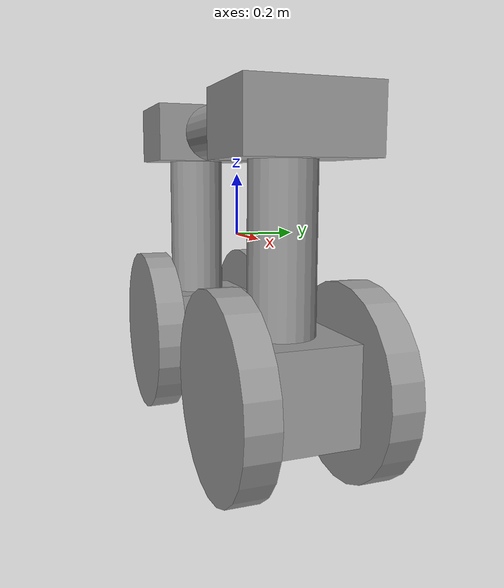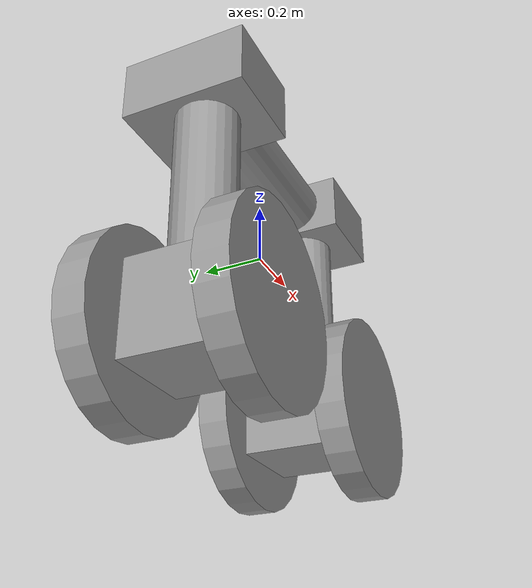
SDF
<?xml version='1.0'?>
<sdf version='1.6'>
  <model name='4wheels'>
    <link name='link_0'>
      <pose frame=''>0.00071 -0.009136 0.350343 0 1.5707 0</pose>
      <inertial>
        <mass>1</mass>
        <inertia>
          <ixx>0.145833</ixx>
          <ixy>0</ixy>
          <ixz>0</ixz>
          <iyy>0.145833</iyy>
          <iyz>0</iyz>
          <izz>0.125</izz>
        </inertia>
        <pose frame=''>0 0 0 0 -0 0</pose>
      </inertial>
      <gravity>1</gravity>
      <self_collide>0</self_collide>
      <kinematic>0</kinematic>
      <visual name='visual'>
        <pose frame=''>0 0 0 0 -0 0</pose>
        <geometry>
          <cylinder>
            <radius>0.1</radius>
            <length>0.5</length>
          </cylinder>
        </geometry>
        <material>
          <lighting>1</lighting>
          <script>
            <uri>file://media/materials/scripts/gazebo.material</uri>
            <name>Gazebo/Grey</name>
          </script>
          <shader type='pixel'>
            <normal_map>__default__</normal_map>
          </shader>
          <ambient>0.3 0.3 0.3 1</ambient>
          <diffuse>0.7 0.7 0.7 1</diffuse>
          <specular>0.01 0.01 0.01 1</specular>
          <emissive>0 0 0 1</emissive>
        </material>
        <transparency>0</transparency>
        <cast_shadows>1</cast_shadows>
      </visual>
      <collision name='collision'>
        <laser_retro>0</laser_retro>
        <max_contacts>10</max_contacts>
        <pose frame=''>0 0 0 0 -0 0</pose>
        <geometry>
          <cylinder>
            <radius>0.1</radius>
            <length>0.5</length>
          </cylinder>
        </geometry>
        <surface>
          <friction>
            <ode>
              <mu>1</mu>
              <mu2>1</mu2>
              <fdir1>0 0 0</fdir1>
              <slip1>0</slip1>
              <slip2>0</slip2>
            </ode>
            <torsional>
              <coefficient>1</coefficient>
              <patch_radius>0</patch_radius>
              <surface_radius>0</surface_radius>
              <use_patch_radius>1</use_patch_radius>
              <ode>
                <slip>0</slip>
              </ode>
            </torsional>
          </friction>
          <bounce>
            <restitution_coefficient>0</restitution_coefficient>
            <threshold>1e+06</threshold>
          </bounce>
          <contact>
            <collide_without_contact>0</collide_without_contact>
            <collide_without_contact_bitmask>1</collide_without_contact_bitmask>
            <collide_bitmask>1</collide_bitmask>
            <ode>
              <soft_cfm>0</soft_cfm>
              <soft_erp>0.2</soft_erp>
              <kp>1e+13</kp>
              <kd>1</kd>
              <max_vel>0.01</max_vel>
              <min_depth>0</min_depth>
            </ode>
            <bullet>
              <split_impulse>1</split_impulse>
              <split_impulse_penetration_threshold>-0.01</split_impulse_penetration_threshold>
              <soft_cfm>0</soft_cfm>
              <soft_erp>0.2</soft_erp>
              <kp>1e+13</kp>
              <kd>1</kd>
            </bullet>
          </contact>
        </surface>
      </collision>
    </link>
    <model name='model'>
      <link name='link_0'>
        <pose frame=''>0.004 0.004 -0.23 0 -0 0</pose>
        <inertial>
          <mass>1</mass>
          <inertia>
            <ixx>0.166667</ixx>
            <ixy>0</ixy>
            <ixz>0</ixz>
            <iyy>0.166667</iyy>
            <iyz>0</iyz>
            <izz>0.166667</izz>
          </inertia>
          <pose frame=''>0 0 0 0 -0 0</pose>
        </inertial>
        <gravity>1</gravity>
        <self_collide>0</self_collide>
        <kinematic>0</kinematic>
        <visual name='visual'>
          <pose frame=''>0 0 0 0 -0 0</pose>
          <geometry>
            <box>
              <size>0.3 0.3 0.3</size>
            </box>
          </geometry>
          <material>
            <lighting>1</lighting>
            <script>
              <uri>file://media/materials/scripts/gazebo.material</uri>
              <name>Gazebo/Grey</name>
            </script>
            <ambient>0.3 0.3 0.3 1</ambient>
            <diffuse>0.7 0.7 0.7 1</diffuse>
            <specular>0.01 0.01 0.01 1</specular>
            <emissive>0 0 0 1</emissive>
            <shader type='vertex'>
              <normal_map>__default__</normal_map>
            </shader>
          </material>
          <transparency>0</transparency>
          <cast_shadows>1</cast_shadows>
        </visual>
        <collision name='collision'>
          <laser_retro>0</laser_retro>
          <max_contacts>10</max_contacts>
          <pose frame=''>0 0 0 0 -0 0</pose>
          <geometry>
            <box>
              <size>0.3 0.3 0.3</size>
            </box>
          </geometry>
          <surface>
            <friction>
              <ode>
                <mu>1</mu>
                <mu2>1</mu2>
                <fdir1>0 0 0</fdir1>
                <slip1>0</slip1>
                <slip2>0</slip2>
              </ode>
              <torsional>
                <coefficient>1</coefficient>
                <patch_radius>0</patch_radius>
                <surface_radius>0</surface_radius>
                <use_patch_radius>1</use_patch_radius>
                <ode>
                  <slip>0</slip>
                </ode>
              </torsional>
            </friction>
            <bounce>
              <restitution_coefficient>0</restitution_coefficient>
              <threshold>1e+06</threshold>
            </bounce>
            <contact>
              <collide_without_contact>0</collide_without_contact>
              <collide_without_contact_bitmask>1</collide_without_contact_bitmask>
              <collide_bitmask>1</collide_bitmask>
              <ode>
                <soft_cfm>0</soft_cfm>
                <soft_erp>0.2</soft_erp>
                <kp>1e+13</kp>
                <kd>1</kd>
                <max_vel>0.01</max_vel>
                <min_depth>0</min_depth>
              </ode>
              <bullet>
                <split_impulse>1</split_impulse>
                <split_impulse_penetration_threshold>-0.01</split_impulse_penetration_threshold>
                <soft_cfm>0</soft_cfm>
                <soft_erp>0.2</soft_erp>
                <kp>1e+13</kp>
                <kd>1</kd>
              </bullet>
            </contact>
          </surface>
        </collision>
      </link>
      <link name='link_1'>
        <pose frame=''>0.004 -0.196019 -0.23 1.5707 -0 0</pose>
        <inertial>
          <mass>1</mass>
          <inertia>
            <ixx>0.145833</ixx>
            <ixy>0</ixy>
            <ixz>0</ixz>
            <iyy>0.145833</iyy>
            <iyz>0</iyz>
            <izz>0.125</izz>
          </inertia>
          <pose frame=''>0 0 0 0 -0 0</pose>
        </inertial>
        <gravity>1</gravity>
        <self_collide>0</self_collide>
        <kinematic>0</kinematic>
        <visual name='visual'>
          <pose frame=''>0 0 0 0 -0 0</pose>
          <geometry>
            <cylinder>
              <radius>0.3</radius>
              <length>0.1</length>
            </cylinder>
          </geometry>
          <material>
            <lighting>1</lighting>
            <script>
              <uri>file://media/materials/scripts/gazebo.material</uri>
              <name>Gazebo/Grey</name>
            </script>
            <ambient>0.3 0.3 0.3 1</ambient>
            <diffuse>0.7 0.7 0.7 1</diffuse>
            <specular>0.01 0.01 0.01 1</specular>
            <emissive>0 0 0 1</emissive>
            <shader type='vertex'>
              <normal_map>__default__</normal_map>
            </shader>
          </material>
          <transparency>0</transparency>
          <cast_shadows>1</cast_shadows>
        </visual>
        <collision name='collision'>
          <laser_retro>0</laser_retro>
          <max_contacts>10</max_contacts>
          <pose frame=''>0 0 0 0 -0 0</pose>
          <geometry>
            <cylinder>
              <radius>0.3</radius>
              <length>0.1</length>
            </cylinder>
          </geometry>
          <surface>
            <friction>
              <ode>
                <mu>1</mu>
                <mu2>1</mu2>
                <fdir1>0 0 0</fdir1>
                <slip1>0</slip1>
                <slip2>0</slip2>
              </ode>
              <torsional>
                <coefficient>1</coefficient>
                <patch_radius>0</patch_radius>
                <surface_radius>0</surface_radius>
                <use_patch_radius>1</use_patch_radius>
                <ode>
                  <slip>0</slip>
                </ode>
              </torsional>
            </friction>
            <bounce>
              <restitution_coefficient>0</restitution_coefficient>
              <threshold>1e+06</threshold>
            </bounce>
            <contact>
              <collide_without_contact>0</collide_without_contact>
              <collide_without_contact_bitmask>1</collide_without_contact_bitmask>
              <collide_bitmask>1</collide_bitmask>
              <ode>
                <soft_cfm>0</soft_cfm>
                <soft_erp>0.2</soft_erp>
                <kp>1e+13</kp>
                <kd>1</kd>
                <max_vel>0.01</max_vel>
                <min_depth>0</min_depth>
              </ode>
              <bullet>
                <split_impulse>1</split_impulse>
                <split_impulse_penetration_threshold>-0.01</split_impulse_penetration_threshold>
                <soft_cfm>0</soft_cfm>
                <soft_erp>0.2</soft_erp>
                <kp>1e+13</kp>
                <kd>1</kd>
              </bullet>
            </contact>
          </surface>
        </collision>
      </link>
      <link name='link_1_clone'>
        <pose frame=''>0.004 0.204019 -0.23 1.5707 -0 0</pose>
        <inertial>
          <mass>1</mass>
          <inertia>
            <ixx>0.145833</ixx>
            <ixy>0</ixy>
            <ixz>0</ixz>
            <iyy>0.145833</iyy>
            <iyz>0</iyz>
            <izz>0.125</izz>
          </inertia>
          <pose frame=''>0 0 0 0 -0 0</pose>
        </inertial>
        <self_collide>0</self_collide>
        <kinematic>0</kinematic>
        <gravity>1</gravity>
        <visual name='visual'>
          <pose frame=''>0 0 0 0 -0 0</pose>
          <geometry>
            <cylinder>
              <radius>0.3</radius>
              <length>0.1</length>
            </cylinder>
          </geometry>
          <material>
            <lighting>1</lighting>
            <script>
              <uri>file://media/materials/scripts/gazebo.material</uri>
              <name>Gazebo/Grey</name>
            </script>
            <ambient>0.3 0.3 0.3 1</ambient>
            <diffuse>0.7 0.7 0.7 1</diffuse>
            <specular>0.01 0.01 0.01 1</specular>
            <emissive>0 0 0 1</emissive>
            <shader type='vertex'>
              <normal_map>__default__</normal_map>
            </shader>
          </material>
          <transparency>0</transparency>
          <cast_shadows>1</cast_shadows>
        </visual>
        <collision name='collision'>
          <laser_retro>0</laser_retro>
          <max_contacts>10</max_contacts>
          <pose frame=''>0 0 0 0 -0 0</pose>
          <geometry>
            <cylinder>
              <radius>0.3</radius>
              <length>0.1</length>
            </cylinder>
          </geometry>
          <surface>
            <friction>
              <ode>
                <mu>1</mu>
                <mu2>1</mu2>
                <fdir1>0 0 0</fdir1>
                <slip1>0</slip1>
                <slip2>0</slip2>
              </ode>
              <torsional>
                <coefficient>1</coefficient>
                <patch_radius>0</patch_radius>
                <surface_radius>0</surface_radius>
                <use_patch_radius>1</use_patch_radius>
                <ode>
                  <slip>0</slip>
                </ode>
              </torsional>
            </friction>
            <bounce>
              <restitution_coefficient>0</restitution_coefficient>
              <threshold>1e+06</threshold>
            </bounce>
            <contact>
              <collide_without_contact>0</collide_without_contact>
              <collide_without_contact_bitmask>1</collide_without_contact_bitmask>
              <collide_bitmask>1</collide_bitmask>
              <ode>
                <soft_cfm>0</soft_cfm>
                <soft_erp>0.2</soft_erp>
                <kp>1e+13</kp>
                <kd>1</kd>
                <max_vel>0.01</max_vel>
                <min_depth>0</min_depth>
              </ode>
              <bullet>
                <split_impulse>1</split_impulse>
                <split_impulse_penetration_threshold>-0.01</split_impulse_penetration_threshold>
                <soft_cfm>0</soft_cfm>
                <soft_erp>0.2</soft_erp>
                <kp>1e+13</kp>
                <kd>1</kd>
              </bullet>
            </contact>
          </surface>
        </collision>
      </link>
      <link name='link_2'>
        <pose frame=''>-0.016 -0.016 0.17 0 -0 0</pose>
        <inertial>
          <mass>1</mass>
          <inertia>
            <ixx>0.145833</ixx>
            <ixy>0</ixy>
            <ixz>0</ixz>
            <iyy>0.145833</iyy>
            <iyz>0</iyz>
            <izz>0.125</izz>
          </inertia>
          <pose frame=''>0 0 0 0 -0 0</pose>
        </inertial>
        <gravity>1</gravity>
        <self_collide>0</self_collide>
        <kinematic>0</kinematic>
        <visual name='visual'>
          <pose frame=''>0 0 0 0 -0 0</pose>
          <geometry>
            <cylinder>
              <radius>0.1</radius>
              <length>0.5</length>
            </cylinder>
          </geometry>
          <material>
            <lighting>1</lighting>
            <script>
              <uri>file://media/materials/scripts/gazebo.material</uri>
              <name>Gazebo/Grey</name>
            </script>
            <ambient>0.3 0.3 0.3 1</ambient>
            <diffuse>0.7 0.7 0.7 1</diffuse>
            <specular>0.01 0.01 0.01 1</specular>
            <emissive>0 0 0 1</emissive>
            <shader type='vertex'>
              <normal_map>__default__</normal_map>
            </shader>
          </material>
          <transparency>0</transparency>
          <cast_shadows>1</cast_shadows>
        </visual>
        <collision name='collision'>
          <laser_retro>0</laser_retro>
          <max_contacts>10</max_contacts>
          <pose frame=''>0 0 0 0 -0 0</pose>
          <geometry>
            <cylinder>
              <radius>0.1</radius>
              <length>0.5</length>
            </cylinder>
          </geometry>
          <surface>
            <friction>
              <ode>
                <mu>1</mu>
                <mu2>1</mu2>
                <fdir1>0 0 0</fdir1>
                <slip1>0</slip1>
                <slip2>0</slip2>
              </ode>
              <torsional>
                <coefficient>1</coefficient>
                <patch_radius>0</patch_radius>
                <surface_radius>0</surface_radius>
                <use_patch_radius>1</use_patch_radius>
                <ode>
                  <slip>0</slip>
                </ode>
              </torsional>
            </friction>
            <bounce>
              <restitution_coefficient>0</restitution_coefficient>
              <threshold>1e+06</threshold>
            </bounce>
            <contact>
              <collide_without_contact>0</collide_without_contact>
              <collide_without_contact_bitmask>1</collide_without_contact_bitmask>
              <collide_bitmask>1</collide_bitmask>
              <ode>
                <soft_cfm>0</soft_cfm>
                <soft_erp>0.2</soft_erp>
                <kp>1e+13</kp>
                <kd>1</kd>
                <max_vel>0.01</max_vel>
                <min_depth>0</min_depth>
              </ode>
              <bullet>
                <split_impulse>1</split_impulse>
                <split_impulse_penetration_threshold>-0.01</split_impulse_penetration_threshold>
                <soft_cfm>0</soft_cfm>
                <soft_erp>0.2</soft_erp>
                <kp>1e+13</kp>
                <kd>1</kd>
              </bullet>
            </contact>
          </surface>
        </collision>
      </link>
      <link name='link_3'>
        <pose frame=''>0.004 0.004 0.52 0 -0 0</pose>
        <inertial>
          <mass>1</mass>
          <inertia>
            <ixx>0.166667</ixx>
            <ixy>0</ixy>
            <ixz>0</ixz>
            <iyy>0.166667</iyy>
            <iyz>0</iyz>
            <izz>0.166667</izz>
          </inertia>
          <pose frame=''>0 0 0 0 -0 0</pose>
        </inertial>
        <gravity>1</gravity>
        <self_collide>0</self_collide>
        <kinematic>0</kinematic>
        <visual name='visual'>
          <pose frame=''>0 0 0 0 -0 0</pose>
          <geometry>
            <box>
              <size>0.3 0.4 0.2</size>
            </box>
          </geometry>
          <material>
            <lighting>1</lighting>
            <script>
              <uri>file://media/materials/scripts/gazebo.material</uri>
              <name>Gazebo/Grey</name>
            </script>
            <ambient>0.3 0.3 0.3 1</ambient>
            <diffuse>0.7 0.7 0.7 1</diffuse>
            <specular>0.01 0.01 0.01 1</specular>
            <emissive>0 0 0 1</emissive>
            <shader type='vertex'>
              <normal_map>__default__</normal_map>
            </shader>
          </material>
          <transparency>0</transparency>
          <cast_shadows>1</cast_shadows>
        </visual>
        <collision name='collision'>
          <laser_retro>0</laser_retro>
          <max_contacts>10</max_contacts>
          <pose frame=''>0 0 0 0 -0 0</pose>
          <geometry>
            <box>
              <size>0.3 0.4 0.2</size>
            </box>
          </geometry>
          <surface>
            <friction>
              <ode>
                <mu>1</mu>
                <mu2>1</mu2>
                <fdir1>0 0 0</fdir1>
                <slip1>0</slip1>
                <slip2>0</slip2>
              </ode>
              <torsional>
                <coefficient>1</coefficient>
                <patch_radius>0</patch_radius>
                <surface_radius>0</surface_radius>
                <use_patch_radius>1</use_patch_radius>
                <ode>
                  <slip>0</slip>
                </ode>
              </torsional>
            </friction>
            <bounce>
              <restitution_coefficient>0</restitution_coefficient>
              <threshold>1e+06</threshold>
            </bounce>
            <contact>
              <collide_without_contact>0</collide_without_contact>
              <collide_without_contact_bitmask>1</collide_without_contact_bitmask>
              <collide_bitmask>1</collide_bitmask>
              <ode>
                <soft_cfm>0</soft_cfm>
                <soft_erp>0.2</soft_erp>
                <kp>1e+13</kp>
                <kd>1</kd>
                <max_vel>0.01</max_vel>
                <min_depth>0</min_depth>
              </ode>
              <bullet>
                <split_impulse>1</split_impulse>
                <split_impulse_penetration_threshold>-0.01</split_impulse_penetration_threshold>
                <soft_cfm>0</soft_cfm>
                <soft_erp>0.2</soft_erp>
                <kp>1e+13</kp>
                <kd>1</kd>
              </bullet>
            </contact>
          </surface>
        </collision>
      </link>
      <joint name='link_0_JOINT_0' type='revolute'>
        <parent>link_0</parent>
        <child>link_1</child>
        <pose frame=''>0 0 0 0 -0 0</pose>
        <axis>
          <xyz>0 0 1</xyz>
          <use_parent_model_frame>0</use_parent_model_frame>
          <limit>
            <lower>-1.79769e+308</lower>
            <upper>1.79769e+308</upper>
            <effort>-1</effort>
            <velocity>-1</velocity>
          </limit>
          <dynamics>
            <spring_reference>0</spring_reference>
            <spring_stiffness>0</spring_stiffness>
            <damping>0</damping>
          </dynamics>
        </axis>
        <physics>
          <ode>
            <limit>
              <cfm>0</cfm>
              <erp>0.2</erp>
            </limit>
            <suspension>
              <cfm>0</cfm>
              <erp>0.2</erp>
            </suspension>
          </ode>
        </physics>
      </joint>
      <joint name='link_0_JOINT_1' type='revolute'>
        <parent>link_0</parent>
        <child>link_1_clone</child>
        <pose frame=''>0 0 0 -0.02 0 0</pose>
        <axis>
          <xyz>0 0 1</xyz>
          <use_parent_model_frame>0</use_parent_model_frame>
          <limit>
            <lower>-1.79769e+308</lower>
            <upper>1.79769e+308</upper>
            <effort>-1</effort>
            <velocity>-1</velocity>
          </limit>
          <dynamics>
            <spring_reference>0</spring_reference>
            <spring_stiffness>0</spring_stiffness>
            <damping>0</damping>
          </dynamics>
        </axis>
        <physics>
          <ode>
            <limit>
              <cfm>0</cfm>
              <erp>0.2</erp>
            </limit>
            <suspension>
              <cfm>0</cfm>
              <erp>0.2</erp>
            </suspension>
          </ode>
        </physics>
      </joint>
      <joint name='link_0_JOINT_2' type='fixed'>
        <parent>link_0</parent>
        <child>link_2</child>
        <pose frame=''>0 0 0 0 -0 0</pose>
        <physics>
          <ode>
            <limit>
              <cfm>0</cfm>
              <erp>0.2</erp>
            </limit>
            <suspension>
              <cfm>0</cfm>
              <erp>0.2</erp>
            </suspension>
          </ode>
        </physics>
      </joint>
      <joint name='link_2_JOINT_3' type='fixed'>
        <parent>link_2</parent>
        <child>link_3</child>
        <pose frame=''>0 0 0 0 -0 0</pose>
        <physics>
          <ode>
            <limit>
              <cfm>0</cfm>
              <erp>0.2</erp>
            </limit>
            <suspension>
              <cfm>0</cfm>
              <erp>0.2</erp>
            </suspension>
          </ode>
        </physics>
      </joint>
      <static>0</static>
      <allow_auto_disable>1</allow_auto_disable>
      <pose frame=''>-0.396366 -0.008559 -0.168535 0 -0 0</pose>
    </model>
    <model name='model_0'>
      <link name='link_0'>
        <pose frame=''>0.004 0.004 -0.23 0 -0 0</pose>
        <inertial>
          <mass>1</mass>
          <inertia>
            <ixx>0.166667</ixx>
            <ixy>0</ixy>
            <ixz>0</ixz>
            <iyy>0.166667</iyy>
            <iyz>0</iyz>
            <izz>0.166667</izz>
          </inertia>
          <pose frame=''>0 0 0 0 -0 0</pose>
        </inertial>
        <gravity>1</gravity>
        <self_collide>0</self_collide>
        <kinematic>0</kinematic>
        <visual name='visual'>
          <pose frame=''>0 0 0 0 -0 0</pose>
          <geometry>
            <box>
              <size>0.3 0.3 0.3</size>
            </box>
          </geometry>
          <material>
            <lighting>1</lighting>
            <script>
              <uri>file://media/materials/scripts/gazebo.material</uri>
              <name>Gazebo/Grey</name>
            </script>
            <ambient>0.3 0.3 0.3 1</ambient>
            <diffuse>0.7 0.7 0.7 1</diffuse>
            <specular>0.01 0.01 0.01 1</specular>
            <emissive>0 0 0 1</emissive>
            <shader type='vertex'>
              <normal_map>__default__</normal_map>
            </shader>
          </material>
          <transparency>0</transparency>
          <cast_shadows>1</cast_shadows>
        </visual>
        <collision name='collision'>
          <laser_retro>0</laser_retro>
          <max_contacts>10</max_contacts>
          <pose frame=''>0 0 0 0 -0 0</pose>
          <geometry>
            <box>
              <size>0.3 0.3 0.3</size>
            </box>
          </geometry>
          <surface>
            <friction>
              <ode>
                <mu>1</mu>
                <mu2>1</mu2>
                <fdir1>0 0 0</fdir1>
                <slip1>0</slip1>
                <slip2>0</slip2>
              </ode>
              <torsional>
                <coefficient>1</coefficient>
                <patch_radius>0</patch_radius>
                <surface_radius>0</surface_radius>
                <use_patch_radius>1</use_patch_radius>
                <ode>
                  <slip>0</slip>
                </ode>
              </torsional>
            </friction>
            <bounce>
              <restitution_coefficient>0</restitution_coefficient>
              <threshold>1e+06</threshold>
            </bounce>
            <contact>
              <collide_without_contact>0</collide_without_contact>
              <collide_without_contact_bitmask>1</collide_without_contact_bitmask>
              <collide_bitmask>1</collide_bitmask>
              <ode>
                <soft_cfm>0</soft_cfm>
                <soft_erp>0.2</soft_erp>
                <kp>1e+13</kp>
                <kd>1</kd>
                <max_vel>0.01</max_vel>
                <min_depth>0</min_depth>
              </ode>
              <bullet>
                <split_impulse>1</split_impulse>
                <split_impulse_penetration_threshold>-0.01</split_impulse_penetration_threshold>
                <soft_cfm>0</soft_cfm>
                <soft_erp>0.2</soft_erp>
                <kp>1e+13</kp>
                <kd>1</kd>
              </bullet>
            </contact>
          </surface>
        </collision>
      </link>
      <link name='link_1'>
        <pose frame=''>0.004 -0.196019 -0.23 1.5707 -0 0</pose>
        <inertial>
          <mass>1</mass>
          <inertia>
            <ixx>0.145833</ixx>
            <ixy>0</ixy>
            <ixz>0</ixz>
            <iyy>0.145833</iyy>
            <iyz>0</iyz>
            <izz>0.125</izz>
          </inertia>
          <pose frame=''>0 0 0 0 -0 0</pose>
        </inertial>
        <gravity>1</gravity>
        <self_collide>0</self_collide>
        <kinematic>0</kinematic>
        <visual name='visual'>
          <pose frame=''>0 0 0 0 -0 0</pose>
          <geometry>
            <cylinder>
              <radius>0.3</radius>
              <length>0.1</length>
            </cylinder>
          </geometry>
          <material>
            <lighting>1</lighting>
            <script>
              <uri>file://media/materials/scripts/gazebo.material</uri>
              <name>Gazebo/Grey</name>
            </script>
            <ambient>0.3 0.3 0.3 1</ambient>
            <diffuse>0.7 0.7 0.7 1</diffuse>
            <specular>0.01 0.01 0.01 1</specular>
            <emissive>0 0 0 1</emissive>
            <shader type='vertex'>
              <normal_map>__default__</normal_map>
            </shader>
          </material>
          <transparency>0</transparency>
          <cast_shadows>1</cast_shadows>
        </visual>
        <collision name='collision'>
          <laser_retro>0</laser_retro>
          <max_contacts>10</max_contacts>
          <pose frame=''>0 0 0 0 -0 0</pose>
          <geometry>
            <cylinder>
              <radius>0.3</radius>
              <length>0.1</length>
            </cylinder>
          </geometry>
          <surface>
            <friction>
              <ode>
                <mu>1</mu>
                <mu2>1</mu2>
                <fdir1>0 0 0</fdir1>
                <slip1>0</slip1>
                <slip2>0</slip2>
              </ode>
              <torsional>
                <coefficient>1</coefficient>
                <patch_radius>0</patch_radius>
                <surface_radius>0</surface_radius>
                <use_patch_radius>1</use_patch_radius>
                <ode>
                  <slip>0</slip>
                </ode>
              </torsional>
            </friction>
            <bounce>
              <restitution_coefficient>0</restitution_coefficient>
              <threshold>1e+06</threshold>
            </bounce>
            <contact>
              <collide_without_contact>0</collide_without_contact>
              <collide_without_contact_bitmask>1</collide_without_contact_bitmask>
              <collide_bitmask>1</collide_bitmask>
              <ode>
                <soft_cfm>0</soft_cfm>
                <soft_erp>0.2</soft_erp>
                <kp>1e+13</kp>
                <kd>1</kd>
                <max_vel>0.01</max_vel>
                <min_depth>0</min_depth>
              </ode>
              <bullet>
                <split_impulse>1</split_impulse>
                <split_impulse_penetration_threshold>-0.01</split_impulse_penetration_threshold>
                <soft_cfm>0</soft_cfm>
                <soft_erp>0.2</soft_erp>
                <kp>1e+13</kp>
                <kd>1</kd>
              </bullet>
            </contact>
          </surface>
        </collision>
      </link>
      <link name='link_1_clone'>
        <pose frame=''>0.004 0.204019 -0.23 1.5707 -0 0</pose>
        <inertial>
          <mass>1</mass>
          <inertia>
            <ixx>0.145833</ixx>
            <ixy>0</ixy>
            <ixz>0</ixz>
            <iyy>0.145833</iyy>
            <iyz>0</iyz>
            <izz>0.125</izz>
          </inertia>
          <pose frame=''>0 0 0 0 -0 0</pose>
        </inertial>
        <self_collide>0</self_collide>
        <kinematic>0</kinematic>
        <gravity>1</gravity>
        <visual name='visual'>
          <pose frame=''>0 0 0 0 -0 0</pose>
          <geometry>
            <cylinder>
              <radius>0.3</radius>
              <length>0.1</length>
            </cylinder>
          </geometry>
          <material>
            <lighting>1</lighting>
            <script>
              <uri>file://media/materials/scripts/gazebo.material</uri>
              <name>Gazebo/Grey</name>
            </script>
            <ambient>0.3 0.3 0.3 1</ambient>
            <diffuse>0.7 0.7 0.7 1</diffuse>
            <specular>0.01 0.01 0.01 1</specular>
            <emissive>0 0 0 1</emissive>
            <shader type='vertex'>
              <normal_map>__default__</normal_map>
            </shader>
          </material>
          <transparency>0</transparency>
          <cast_shadows>1</cast_shadows>
        </visual>
        <collision name='collision'>
          <laser_retro>0</laser_retro>
          <max_contacts>10</max_contacts>
          <pose frame=''>0 0 0 0 -0 0</pose>
          <geometry>
            <cylinder>
              <radius>0.3</radius>
              <length>0.1</length>
            </cylinder>
          </geometry>
          <surface>
            <friction>
              <ode>
                <mu>1</mu>
                <mu2>1</mu2>
                <fdir1>0 0 0</fdir1>
                <slip1>0</slip1>
                <slip2>0</slip2>
              </ode>
              <torsional>
                <coefficient>1</coefficient>
                <patch_radius>0</patch_radius>
                <surface_radius>0</surface_radius>
                <use_patch_radius>1</use_patch_radius>
                <ode>
                  <slip>0</slip>
                </ode>
              </torsional>
            </friction>
            <bounce>
              <restitution_coefficient>0</restitution_coefficient>
              <threshold>1e+06</threshold>
            </bounce>
            <contact>
              <collide_without_contact>0</collide_without_contact>
              <collide_without_contact_bitmask>1</collide_without_contact_bitmask>
              <collide_bitmask>1</collide_bitmask>
              <ode>
                <soft_cfm>0</soft_cfm>
                <soft_erp>0.2</soft_erp>
                <kp>1e+13</kp>
                <kd>1</kd>
                <max_vel>0.01</max_vel>
                <min_depth>0</min_depth>
              </ode>
              <bullet>
                <split_impulse>1</split_impulse>
                <split_impulse_penetration_threshold>-0.01</split_impulse_penetration_threshold>
                <soft_cfm>0</soft_cfm>
                <soft_erp>0.2</soft_erp>
                <kp>1e+13</kp>
                <kd>1</kd>
              </bullet>
            </contact>
          </surface>
        </collision>
      </link>
      <link name='link_2'>
        <pose frame=''>-0.016 -0.016 0.17 0 -0 0</pose>
        <inertial>
          <mass>1</mass>
          <inertia>
            <ixx>0.145833</ixx>
            <ixy>0</ixy>
            <ixz>0</ixz>
            <iyy>0.145833</iyy>
            <iyz>0</iyz>
            <izz>0.125</izz>
          </inertia>
          <pose frame=''>0 0 0 0 -0 0</pose>
        </inertial>
        <gravity>1</gravity>
        <self_collide>0</self_collide>
        <kinematic>0</kinematic>
        <visual name='visual'>
          <pose frame=''>0 0 0 0 -0 0</pose>
          <geometry>
            <cylinder>
              <radius>0.1</radius>
              <length>0.5</length>
            </cylinder>
          </geometry>
          <material>
            <lighting>1</lighting>
            <script>
              <uri>file://media/materials/scripts/gazebo.material</uri>
              <name>Gazebo/Grey</name>
            </script>
            <ambient>0.3 0.3 0.3 1</ambient>
            <diffuse>0.7 0.7 0.7 1</diffuse>
            <specular>0.01 0.01 0.01 1</specular>
            <emissive>0 0 0 1</emissive>
            <shader type='vertex'>
              <normal_map>__default__</normal_map>
            </shader>
          </material>
          <transparency>0</transparency>
          <cast_shadows>1</cast_shadows>
        </visual>
        <collision name='collision'>
          <laser_retro>0</laser_retro>
          <max_contacts>10</max_contacts>
          <pose frame=''>0 0 0 0 -0 0</pose>
          <geometry>
            <cylinder>
              <radius>0.1</radius>
              <length>0.5</length>
            </cylinder>
          </geometry>
          <surface>
            <friction>
              <ode>
                <mu>1</mu>
                <mu2>1</mu2>
                <fdir1>0 0 0</fdir1>
                <slip1>0</slip1>
                <slip2>0</slip2>
              </ode>
              <torsional>
                <coefficient>1</coefficient>
                <patch_radius>0</patch_radius>
                <surface_radius>0</surface_radius>
                <use_patch_radius>1</use_patch_radius>
                <ode>
                  <slip>0</slip>
                </ode>
              </torsional>
            </friction>
            <bounce>
              <restitution_coefficient>0</restitution_coefficient>
              <threshold>1e+06</threshold>
            </bounce>
            <contact>
              <collide_without_contact>0</collide_without_contact>
              <collide_without_contact_bitmask>1</collide_without_contact_bitmask>
              <collide_bitmask>1</collide_bitmask>
              <ode>
                <soft_cfm>0</soft_cfm>
                <soft_erp>0.2</soft_erp>
                <kp>1e+13</kp>
                <kd>1</kd>
                <max_vel>0.01</max_vel>
                <min_depth>0</min_depth>
              </ode>
              <bullet>
                <split_impulse>1</split_impulse>
                <split_impulse_penetration_threshold>-0.01</split_impulse_penetration_threshold>
                <soft_cfm>0</soft_cfm>
                <soft_erp>0.2</soft_erp>
                <kp>1e+13</kp>
                <kd>1</kd>
              </bullet>
            </contact>
          </surface>
        </collision>
      </link>
      <link name='link_3'>
        <pose frame=''>0.004 0.004 0.52 0 -0 0</pose>
        <inertial>
          <mass>1</mass>
          <inertia>
            <ixx>0.166667</ixx>
            <ixy>0</ixy>
            <ixz>0</ixz>
            <iyy>0.166667</iyy>
            <iyz>0</iyz>
            <izz>0.166667</izz>
          </inertia>
          <pose frame=''>0 0 0 0 -0 0</pose>
        </inertial>
        <gravity>1</gravity>
        <self_collide>0</self_collide>
        <kinematic>0</kinematic>
        <visual name='visual'>
          <pose frame=''>0 0 0 0 -0 0</pose>
          <geometry>
            <box>
              <size>0.3 0.4 0.2</size>
            </box>
          </geometry>
          <material>
            <lighting>1</lighting>
            <script>
              <uri>file://media/materials/scripts/gazebo.material</uri>
              <name>Gazebo/Grey</name>
            </script>
            <ambient>0.3 0.3 0.3 1</ambient>
            <diffuse>0.7 0.7 0.7 1</diffuse>
            <specular>0.01 0.01 0.01 1</specular>
            <emissive>0 0 0 1</emissive>
            <shader type='vertex'>
              <normal_map>__default__</normal_map>
            </shader>
          </material>
          <transparency>0</transparency>
          <cast_shadows>1</cast_shadows>
        </visual>
        <collision name='collision'>
          <laser_retro>0</laser_retro>
          <max_contacts>10</max_contacts>
          <pose frame=''>0 0 0 0 -0 0</pose>
          <geometry>
            <box>
              <size>0.3 0.4 0.2</size>
            </box>
          </geometry>
          <surface>
            <friction>
              <ode>
                <mu>1</mu>
                <mu2>1</mu2>
                <fdir1>0 0 0</fdir1>
                <slip1>0</slip1>
                <slip2>0</slip2>
              </ode>
              <torsional>
                <coefficient>1</coefficient>
                <patch_radius>0</patch_radius>
                <surface_radius>0</surface_radius>
                <use_patch_radius>1</use_patch_radius>
                <ode>
                  <slip>0</slip>
                </ode>
              </torsional>
            </friction>
            <bounce>
              <restitution_coefficient>0</restitution_coefficient>
              <threshold>1e+06</threshold>
            </bounce>
            <contact>
              <collide_without_contact>0</collide_without_contact>
              <collide_without_contact_bitmask>1</collide_without_contact_bitmask>
              <collide_bitmask>1</collide_bitmask>
              <ode>
                <soft_cfm>0</soft_cfm>
                <soft_erp>0.2</soft_erp>
                <kp>1e+13</kp>
                <kd>1</kd>
                <max_vel>0.01</max_vel>
                <min_depth>0</min_depth>
              </ode>
              <bullet>
                <split_impulse>1</split_impulse>
                <split_impulse_penetration_threshold>-0.01</split_impulse_penetration_threshold>
                <soft_cfm>0</soft_cfm>
                <soft_erp>0.2</soft_erp>
                <kp>1e+13</kp>
                <kd>1</kd>
              </bullet>
            </contact>
          </surface>
        </collision>
      </link>
      <joint name='link_0_JOINT_0' type='revolute'>
        <parent>link_0</parent>
        <child>link_1</child>
        <pose frame=''>0 0 0 0 -0 0</pose>
        <axis>
          <xyz>0 0 1</xyz>
          <use_parent_model_frame>0</use_parent_model_frame>
          <limit>
            <lower>-1.79769e+308</lower>
            <upper>1.79769e+308</upper>
            <effort>-1</effort>
            <velocity>-1</velocity>
          </limit>
          <dynamics>
            <spring_reference>0</spring_reference>
            <spring_stiffness>0</spring_stiffness>
            <damping>0</damping>
          </dynamics>
        </axis>
        <physics>
          <ode>
            <limit>
              <cfm>0</cfm>
              <erp>0.2</erp>
            </limit>
            <suspension>
              <cfm>0</cfm>
              <erp>0.2</erp>
            </suspension>
          </ode>
        </physics>
      </joint>
      <joint name='link_0_JOINT_1' type='revolute'>
        <parent>link_0</parent>
        <child>link_1_clone</child>
        <pose frame=''>0 0 0 -0.02 0 0</pose>
        <axis>
          <xyz>0 0 1</xyz>
          <use_parent_model_frame>0</use_parent_model_frame>
          <limit>
            <lower>-1.79769e+308</lower>
            <upper>1.79769e+308</upper>
            <effort>-1</effort>
            <velocity>-1</velocity>
          </limit>
          <dynamics>
            <spring_reference>0</spring_reference>
            <spring_stiffness>0</spring_stiffness>
            <damping>0</damping>
          </dynamics>
        </axis>
        <physics>
          <ode>
            <limit>
              <cfm>0</cfm>
              <erp>0.2</erp>
            </limit>
            <suspension>
              <cfm>0</cfm>
              <erp>0.2</erp>
            </suspension>
          </ode>
        </physics>
      </joint>
      <joint name='link_0_JOINT_2' type='fixed'>
        <parent>link_0</parent>
        <child>link_2</child>
        <pose frame=''>0 0 0 0 -0 0</pose>
        <physics>
          <ode>
            <limit>
              <cfm>0</cfm>
              <erp>0.2</erp>
            </limit>
            <suspension>
              <cfm>0</cfm>
              <erp>0.2</erp>
            </suspension>
          </ode>
        </physics>
      </joint>
      <joint name='link_2_JOINT_3' type='fixed'>
        <parent>link_2</parent>
        <child>link_3</child>
        <pose frame=''>0 0 0 0 -0 0</pose>
        <physics>
          <ode>
            <limit>
              <cfm>0</cfm>
              <erp>0.2</erp>
            </limit>
            <suspension>
              <cfm>0</cfm>
              <erp>0.2</erp>
            </suspension>
          </ode>
        </physics>
      </joint>
      <static>0</static>
      <allow_auto_disable>1</allow_auto_disable>
      <pose frame=''>0.395648 0.017694 -0.181804 0 -0 0</pose>
    </model>
    <joint name='link_0_JOINT_1' type='fixed'>
      <parent>link_0</parent>
      <child>model_0::link_3</child>
      <pose frame=''>0 0 0 0 -0 0</pose>
      <physics>
        <ode>
          <limit>
            <cfm>0</cfm>
            <erp>0.2</erp>
          </limit>
          <suspension>
            <cfm>0</cfm>
            <erp>0.2</erp>
          </suspension>
        </ode>
      </physics>
    </joint>
    <joint name='link_3_JOINT_0' type='fixed'>
      <parent>model::link_3</parent>
      <child>link_0</child>
      <pose frame=''>0 0 0 0 -0.04 0</pose>
      <physics>
        <ode>
          <limit>
            <cfm>0</cfm>
            <erp>0.2</erp>
          </limit>
          <suspension>
            <cfm>0</cfm>
            <erp>0.2</erp>
          </suspension>
        </ode>
      </physics>
    </joint>
    <static>0</static>
    <allow_auto_disable>1</allow_auto_disable>
  </model>
</sdf>
